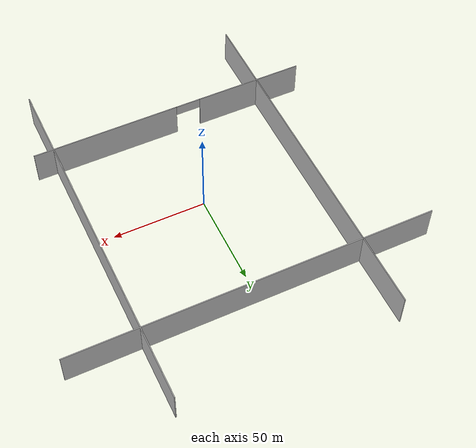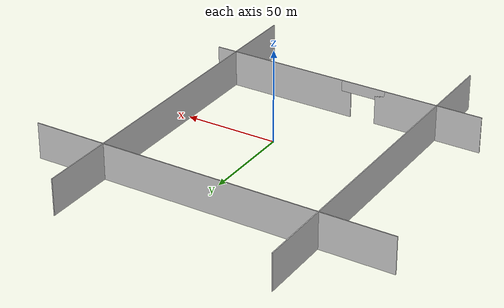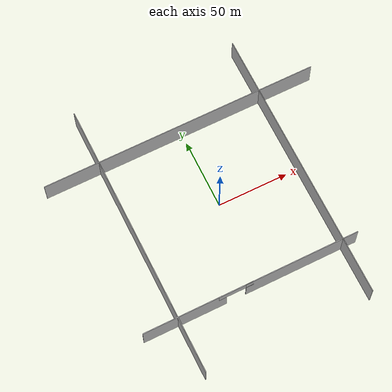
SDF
<?xml version="1.0" ?>
<sdf version="1.5">
  <world name="inspection_world">
    <physics name="default_physics" default="true" type="ode">
      <max_step_size>0.002</max_step_size>
      <real_time_factor>1</real_time_factor>
      <real_time_update_rate>500</real_time_update_rate>
      <ode>
        <solver>
          <type>quick</type>
          <iters>50</iters>
          <sor>0.5</sor>
        </solver>
      </ode>
    </physics>
    <scene>
      <ambient>0.01 0.01 0.01 1.0</ambient>
      <sky>
        <clouds>
          <speed>12</speed>
        </clouds>
      </sky>
      <shadows>1</shadows>
    </scene>

    <!-- Global light sources -->
    <light name='sun' type='directional'>
      <cast_shadows>1</cast_shadows>
      <pose>0 0 10 0 -0 0</pose>
      <diffuse>1.0 1.0 1.0 1</diffuse>
      <specular>0.1 0.1 0.1 1</specular>
      <attenuation>
        <range>1000</range>
        <constant>0.9</constant>
        <linear>0.01</linear>
        <quadratic>0.001</quadratic>
      </attenuation>
      <direction>-0.5 -0.5 -1.0</direction>
    </light>
    <light name='sun_diffuse' type='directional'>
      <cast_shadows>1</cast_shadows>
      <pose>0 0 -10 0 -0 0</pose>
      <diffuse>1.0 1.0 1.0 1</diffuse>
      <specular>0.3 0.3 0.3 1</specular>
      <attenuation>
        <range>1000</range>
        <constant>0.9</constant>
        <linear>0.01</linear>
        <quadratic>0.001</quadratic>
      </attenuation>
      <direction>0.5 0.5 -1.0</direction>
    </light>

    <model name="wall1">
        <static>true</static>
        <pose>0 60 0 0 0 0</pose>
        <link name="wall_link">
            <collision name="collision">
                <geometry>
                    <box>
                        <size>200 0.5 20</size>
                    </box>
                </geometry>
            </collision>
            <visual name="visual">
                <geometry>
                    <box>
                        <size>200 0.5 20</size>
                    </box>
                </geometry>
            </visual>
        </link>
    </model>
    <model name="wall2a">
        <static>true</static>
        <pose>30 -60 0 0 0 0</pose>
        <link name="wall_link">
            <collision name="collision">
                <geometry>
                    <box>
                        <size>82 0.5 20</size>
                    </box>
                </geometry>
            </collision>
            <visual name="visual">
                <geometry>
                    <box>
                        <size>82 0.5 20</size>
                    </box>
                </geometry>
            </visual>
        </link>
    </model>
    <model name="wall2b">
        <static>true</static>
        <pose>-55 -60 0 0 0 0</pose>
        <link name="wall_link">
            <collision name="collision">
                <geometry>
                    <box>
                        <size>60 0.5 20</size>
                    </box>
                </geometry>
            </collision>
            <visual name="visual">
                <geometry>
                    <box>
                        <size>60 0.5 20</size>
                    </box>
                </geometry>
            </visual>
        </link>
    </model>
    <model name="wall2c">
        <static>true</static>
        <pose>-18 -60 7 0 0 0</pose>
        <link name="wall_link">
            <collision name="collision">
                <geometry>
                    <box>
                        <size>25 0.5 6</size>
                    </box>
                </geometry>
            </collision>
            <visual name="visual">
                <geometry>
                    <box>
                        <size>25 0.5 6</size>
                    </box>
                </geometry>
            </visual>
        </link>
    </model>
    <model name="wall3">
        <static>true</static>
        <pose>60 0 0 0 0 0</pose>
        <link name="wall_link">
            <collision name="collision">
                <geometry>
                    <box>
                        <size>0.5 200 20</size>
                    </box>
                </geometry>
            </collision>
            <visual name="visual">
                <geometry>
                    <box>
                        <size>0.5 200 20</size>
                    </box>
                </geometry>
            </visual>
        </link>
    </model>
    <model name="wall4">
        <static>true</static>
        <pose>-60 0 0 0 0 0</pose>
        <link name="wall_link">
            <collision name="collision">
                <geometry>
                    <box>
                        <size>0.5 200 20</size>
                    </box>
                </geometry>
            </collision>
            <visual name="visual">
                <geometry>
                    <box>
                        <size>0.5 200 20</size>
                    </box>
                </geometry>
            </visual>
        </link>
    </model>

    <!-- The water level -->
    <model name="mud_pit">
        <static>true</static>
        <pose>0 0 -1.5 0 0 0</pose>
        <link name="mud_link">
            <collision name="mud_collision">
              <geometry>
                  <box>
                      <size>500 500 3.0</size>
                  </box>
              </geometry>
              <surface>
                <contact>
                  <collide_without_contact>true</collide_without_contact>
                </contact>
              </surface>
            </collision>
            <sensor name="mud_contact" type="contact">
              <always_on>true</always_on>
              <update_rate>1000</update_rate>
              <contact>
                <collision>mud_collision</collision>
              </contact>
            </sensor>
        </link>

        <plugin name="gazebo_mud" filename="libMudPlugin.so">
          <contact_sensor_name>mud_link/mud_contact</contact_sensor_name>
          <stiffness>0.0</stiffness>
          <damping>100.0</damping>
          <link_name>jackal::base_link</link_name>
        </plugin>
    </model>

    <!-- Origin placed in northern Alberta, Canada  -->
    <spherical_coordinates>
      <latitude_deg>57.0271155</latitude_deg>
      <longitude_deg>-115.426770</longitude_deg>
      <elevation>600</elevation>
      <heading_deg>0</heading_deg>
    </spherical_coordinates>

    <!-- Point the camera so the robot's in-frame -->
    <gui fullscreen='0'>
      <camera name='user_camera'>
        <pose>25.719423 -7.832449 7.892787 0.0 0.383643 -2.874995</pose>
        <view_controller>orbit</view_controller>
      </camera>
    </gui>
  </world>
</sdf>
